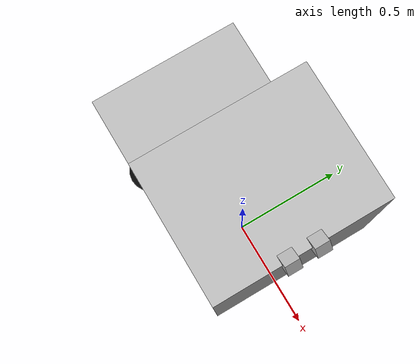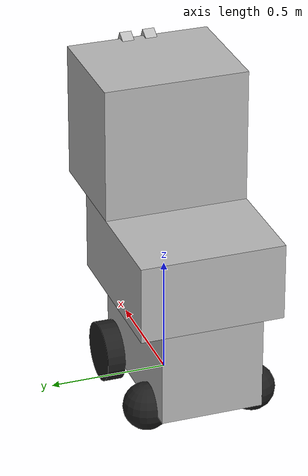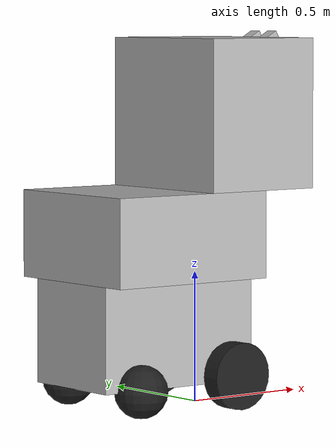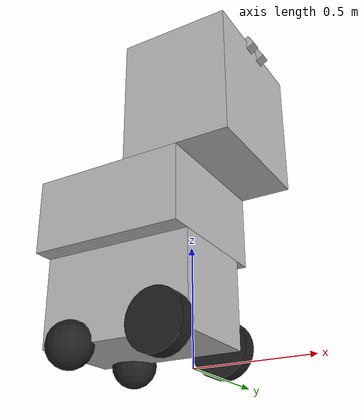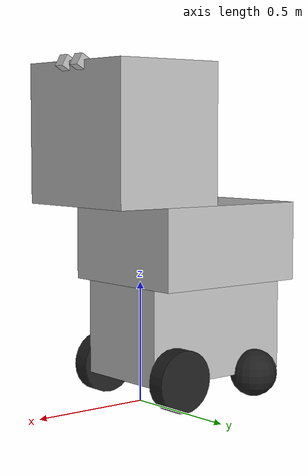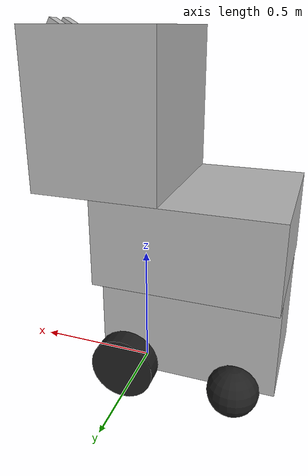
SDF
<sdf version='1.4'>
  <model name='hal'>
    <link name='chassis'>
      <pose>0 0 0 0 -0 0</pose>
      <inertial>
        <pose>0 0 0 0 -0 0</pose>
        <mass>60.0012</mass>
        <inertia>
          <ixx>10.001</ixx>
          <ixy>0</ixy>
          <ixz>0</ixz>
          <iyy>10.001</iyy>
          <iyz>0</iyz>
          <izz>10.001</izz>
        </inertia>
      </inertial>
      <collision name='chassis_collision'>
        <pose>-0.2413 0 0.29685 0 -0 0</pose>
        <geometry>
          <box>
            <size>0.6858 0.4318 0.3937</size>
          </box>
        </geometry>
      </collision>
      <collision name='chassis_collision_chassis_1'>
        <pose>-0.2413 0 0.6588 0 -0 0</pose>
        <geometry>
          <box>
            <size>0.6858 0.6096 0.3302</size>
          </box>
        </geometry>
      </collision>
      <collision name='chassis_collision_chassis_2'>
        <pose>0.0889 0 1.10965 0 -0 0</pose>
        <geometry>
          <box>
            <size>0.4826 0.6096 0.5715</size>
          </box>
        </geometry>
      </collision>
      <collision name='chassis_collision_left_camera_link'>
        <pose>0.3302 0.05 1.3854 0 1.047 0</pose>
        <geometry>
          <box>
            <size>0.05 0.05 0.05</size>
          </box>
        </geometry>
      </collision>
      <collision name='chassis_collision_left_caster'>
        <pose>-0.4318 0.2286 0.1 0 -0 0</pose>
        <geometry>
          <sphere>
            <radius>0.1</radius>
          </sphere>
        </geometry>
        <surface>
          <contact>
            <ode/>
          </contact>
          <friction>
            <ode>
              <mu>0</mu>
              <mu2>0</mu2>
            </ode>
          </friction>
        </surface>
      </collision>
      <collision name='chassis_collision_right_camera_link'>
        <pose>0.3302 -0.05 1.3854 0 1.047 0</pose>
        <geometry>
          <box>
            <size>0.05 0.05 0.05</size>
          </box>
        </geometry>
      </collision>
      <collision name='chassis_collision_right_caster'>
        <pose>-0.4318 -0.2286 0.1 0 -0 0</pose>
        <geometry>
          <sphere>
            <radius>0.1</radius>
          </sphere>
        </geometry>
        <surface>
          <contact>
            <ode/>
          </contact>
          <friction>
            <ode>
              <mu>0</mu>
              <mu2>0</mu2>
            </ode>
          </friction>
        </surface>
      </collision>
      <visual name='chassis_visual'>
        <pose>-0.2413 0 0.29685 0 -0 0</pose>
        <geometry>
          <box>
            <size>0.6858 0.4318 0.3937</size>
          </box>
        </geometry>
      </visual>
      <visual name='chassis_visual_chassis_1'>
        <pose>-0.2413 0 0.6588 0 -0 0</pose>
        <geometry>
          <box>
            <size>0.6858 0.6096 0.3302</size>
          </box>
        </geometry>
      </visual>
      <visual name='chassis_visual_chassis_2'>
        <pose>0.0889 0 1.10965 0 -0 0</pose>
        <geometry>
          <box>
            <size>0.4826 0.6096 0.5715</size>
          </box>
        </geometry>
      </visual>
      <visual name='chassis_visual_left_camera_link'>
        <pose>0.3302 0.05 1.3854 0 1.047 0</pose>
        <geometry>
          <box>
            <size>0.05 0.05 0.05</size>
          </box>
        </geometry>
      </visual>
      <visual name='chassis_visual_left_caster'>
        <pose>-0.4318 0.2286 0.1 0 -0 0</pose>
        <geometry>
          <sphere>
            <radius>0.1</radius>
          </sphere>
        </geometry>
        <material>
          <script>
            <name>Gazebo/Black</name>
            <uri>__default__</uri>
          </script>
        </material>
      </visual>
      <visual name='chassis_visual_right_camera_link'>
        <pose>0.3302 -0.05 1.3854 0 1.047 0</pose>
        <geometry>
          <box>
            <size>0.05 0.05 0.05</size>
          </box>
        </geometry>
      </visual>
      <visual name='chassis_visual_right_caster'>
        <pose>-0.4318 -0.2286 0.1 0 -0 0</pose>
        <geometry>
          <sphere>
            <radius>0.1</radius>
          </sphere>
        </geometry>
        <material>
          <script>
            <name>Gazebo/Black</name>
            <uri>__default__</uri>
          </script>
        </material>
      </visual>
      <velocity_decay>
        <linear>0</linear>
        <angular>0</angular>
      </velocity_decay>
      <gravity>1</gravity>
      <velocity_decay>
        <linear>0</linear>
        <angular>0</angular>
      </velocity_decay>
      <self_collide>0</self_collide>
    </link>
    <link name='left_wheel'>
      <pose>0 0.254 0.127 0 -0 0</pose>
      <inertial>
        <pose>0 0 0 0 -0 0</pose>
        <mass>30</mass>
        <inertia>
          <ixx>5</ixx>
          <ixy>0</ixy>
          <ixz>0</ixz>
          <iyy>5</iyy>
          <iyz>0</iyz>
          <izz>5</izz>
        </inertia>
      </inertial>
      <collision name='left_wheel_collision'>
        <pose>0 0 0 0 1.5707 1.5707</pose>
        <geometry>
          <cylinder>
            <length>0.0762</length>
            <radius>0.127</radius>
          </cylinder>
        </geometry>
        <surface>
          <contact>
            <ode/>
          </contact>
          <friction>
            <ode>
              <mu>100</mu>
              <mu2>100</mu2>
            </ode>
          </friction>
        </surface>
      </collision>
      <visual name='left_wheel_visual'>
        <pose>0 0 0 0 1.5707 1.5707</pose>
        <geometry>
          <cylinder>
            <length>0.0762</length>
            <radius>0.127</radius>
          </cylinder>
        </geometry>
        <material>
          <script>
            <name>Gazebo/Black</name>
            <uri>__default__</uri>
          </script>
        </material>
      </visual>
      <gravity>1</gravity>
      <velocity_decay>
        <linear>0</linear>
        <angular>0</angular>
      </velocity_decay>
      <self_collide>0</self_collide>
    </link>
    <joint name='left_wheel_hinge' type='revolute'>
      <child>left_wheel</child>
      <parent>chassis</parent>
      <axis>
        <xyz>0 1 0</xyz>
        <limit>
          <lower>-1e+20</lower>
          <upper>1e+20</upper>
          <effort>3000</effort>
          <velocity>3000</velocity>
        </limit>
        <dynamics>
          <damping>0</damping>
        </dynamics>
      </axis>
    </joint>
    <link name='right_wheel'>
      <pose>0 -0.254 0.127 0 -0 0</pose>
      <inertial>
        <pose>0 0 0 0 -0 0</pose>
        <mass>30</mass>
        <inertia>
          <ixx>5</ixx>
          <ixy>0</ixy>
          <ixz>0</ixz>
          <iyy>5</iyy>
          <iyz>0</iyz>
          <izz>5</izz>
        </inertia>
      </inertial>
      <collision name='right_wheel_collision'>
        <pose>0 0 0 0 1.5707 1.5707</pose>
        <geometry>
          <cylinder>
            <length>0.0762</length>
            <radius>0.127</radius>
          </cylinder>
        </geometry>
        <surface>
          <contact>
            <ode/>
          </contact>
          <friction>
            <ode>
              <mu>100</mu>
              <mu2>100</mu2>
            </ode>
          </friction>
        </surface>
      </collision>
      <visual name='right_wheel_visual'>
        <pose>0 0 0 0 1.5707 1.5707</pose>
        <geometry>
          <cylinder>
            <length>0.0762</length>
            <radius>0.127</radius>
          </cylinder>
        </geometry>
        <material>
          <script>
            <name>Gazebo/Black</name>
            <uri>__default__</uri>
          </script>
        </material>
      </visual>
      <gravity>1</gravity>
      <velocity_decay>
        <linear>0</linear>
        <angular>0</angular>
      </velocity_decay>
      <self_collide>0</self_collide>
    </link>
    <joint name='right_wheel_hinge' type='revolute'>
      <child>right_wheel</child>
      <parent>chassis</parent>
      <axis>
        <xyz>0 1 0</xyz>
        <limit>
          <lower>-1e+20</lower>
          <upper>1e+20</upper>
          <effort>3000</effort>
          <velocity>3000</velocity>
        </limit>
        <dynamics>
          <damping>0</damping>
        </dynamics>
      </axis>
    </joint>
  </model>
</sdf>
